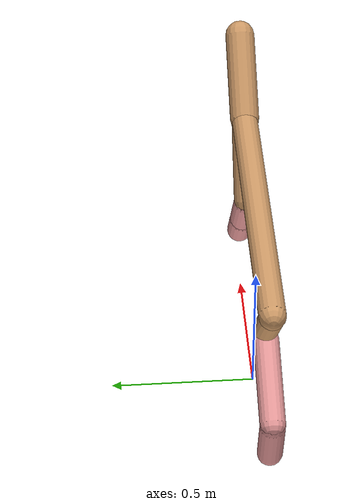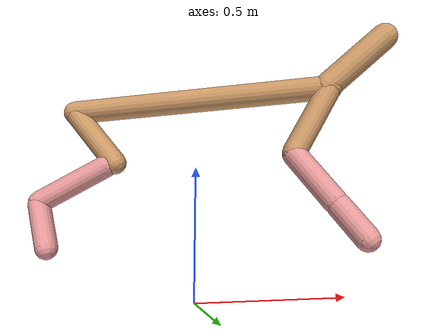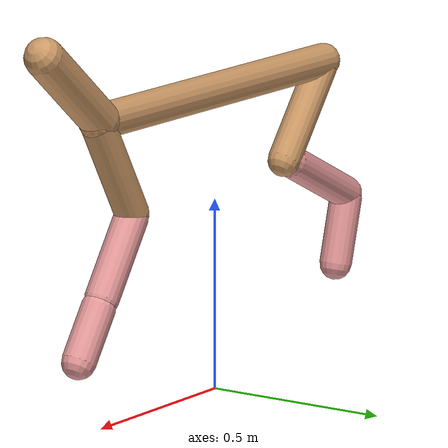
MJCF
<mujoco model="cheetah">
  <compiler angle="radian" coordinate="local" inertiafromgeom="true" settotalmass="14" />
  <default>
    <joint armature=".1" damping=".01" limited="true" solimplimit="0 .8 .03" solreflimit=".02 1" stiffness="8" />
    <geom conaffinity="0" condim="3" contype="1" friction="0.8 .1 .1" rgba="0.8 0.6 .4 1" solimp="0.0 0.8 0.01" solref="0.02 1" />
    <motor ctrllimited="true" ctrlrange="-1 1" />
  </default>
  <size nstack="300000" nuser_geom="1" />
  <option gravity="0 0 -9.81" timestep="0.01" />
  <worldbody>
    <body name="torso" pos="0.0 0.0 0.7843141317789717">
      <joint armature="0" axis="1 0 0" damping="0" limited="false" name="ignorex" pos="0 0 0" stiffness="0" type="slide" />
      <joint armature="0" axis="0 0 1" damping="0" limited="false" name="ignorez" pos="0 0 0" stiffness="0" type="slide" />
      <joint armature="0" axis="0 1 0" damping="0" limited="false" name="ignorey" pos="0 0 0" stiffness="0" type="hinge" />
      <geom fromto="-0.5 0.0 0.0 0.5104057715996833 0.0 0.0" name="torso" size="0.045177288980582736" type="capsule" />
      <geom axisangle="0 1 0 .87" name="head" pos="0.6104057715996832 0.0 0.1" size="0.050499938812984216 0.15" type="capsule" />

      <body name="bthigh" pos="-.5 0 0">
        <joint axis="0 1 0" damping="6" name="bthigh" pos="0 0 0" range="-.52 1.05" stiffness="240" type="hinge" />
        <geom axisangle="0 1 0 -3.8" name="bthigh" pos="0.09724454496526336 0.0 -0.12641790845484235" size="0.043057416843563345 0.1404807177244229" type="capsule" />
        <body name="bshin" pos="0.1544890899305267 0.0 -0.24283581690968473">
          <joint axis="0 1 0" damping="4.5" name="bshin" pos="0 0 0" range="-.785 .785" stiffness="180" type="hinge" />
          <geom axisangle="0 1 0 -2.03" name="bshin" pos="-0.13581844591267572 0.0 -0.06790922295633786" rgba="0.9 0.6 0.6 1" size="0.043057416843563345 0.1453248804045754" type="capsule" />
          <body name="bfoot" pos="-0.27163689182535145 0.0 -0.13581844591267572">
            <joint axis="0 1 0" damping="3" name="bfoot" pos="0 0 0" range="-.4 .785" stiffness="120" type="hinge" />
            <geom axisangle="0 1 0 -.27" name="bfoot" pos="0.029134350057334415 0.0 -0.09420106518538128" rgba="0.9 0.6 0.6 1" size="0.043057416843563345 0.09107025838686725" type="capsule" />
            <inertial mass="10" />
          </body>
        </body>
      </body>
      <body name="fthigh" pos="0.5104057715996833 0.0 0.0">
        <joint axis="0 1 0" damping="4.5" name="fthigh" pos="0 0 0" range="-1.5 0.8" stiffness="180" type="hinge" />
        <geom axisangle="0 1 0 .52" name="fthigh" pos="-0.075910354173714 0.0 -0.13013203572636683" size="0.04428813893757976 0.14472989490230467" type="capsule" />
        <body name="fshin" pos="-0.151820708347428 0.0 -0.26026407145273367">
          <joint axis="0 1 0" damping="3" name="fshin" pos="0 0 0" range="-1.2 1.1" stiffness="120" type="hinge" />
          <geom axisangle="0 1 0 -.6" name="fshin" pos="0.07047353926515763 0.0 -0.09757874667483364" rgba="0.9 0.6 0.6 1" size="0.04428813893757976 0.11534863804243829" type="capsule" />
          <body name="ffoot" pos="0.14094707853031527 0.0 -0.19515749334966728">
            <joint axis="0 1 0" damping="1.5" name="ffoot" pos="0 0 0" range="-3.1 -0.3" stiffness="60" type="hinge" />
            <geom axisangle="0 1 0 -.6" name="ffoot" pos="0.04833843669143723 0.0 -0.0751931237422357" rgba="0.9 0.6 0.6 1" size="0.04428813893757976 0.07617362889594982" type="capsule" />
            <inertial mass="10" />
          </body>
        </body>
      </body>
    </body>
  </worldbody>
  <actuator>
    <motor gear="120" joint="bthigh" name="bthigh" />
    <motor gear="90" joint="bshin" name="bshin" />
    <motor gear="60" joint="bfoot" name="bfoot" />
    <motor gear="120" joint="fthigh" name="fthigh" />
    <motor gear="60" joint="fshin" name="fshin" />
    <motor gear="30" joint="ffoot" name="ffoot" />
  </actuator>
</mujoco>
